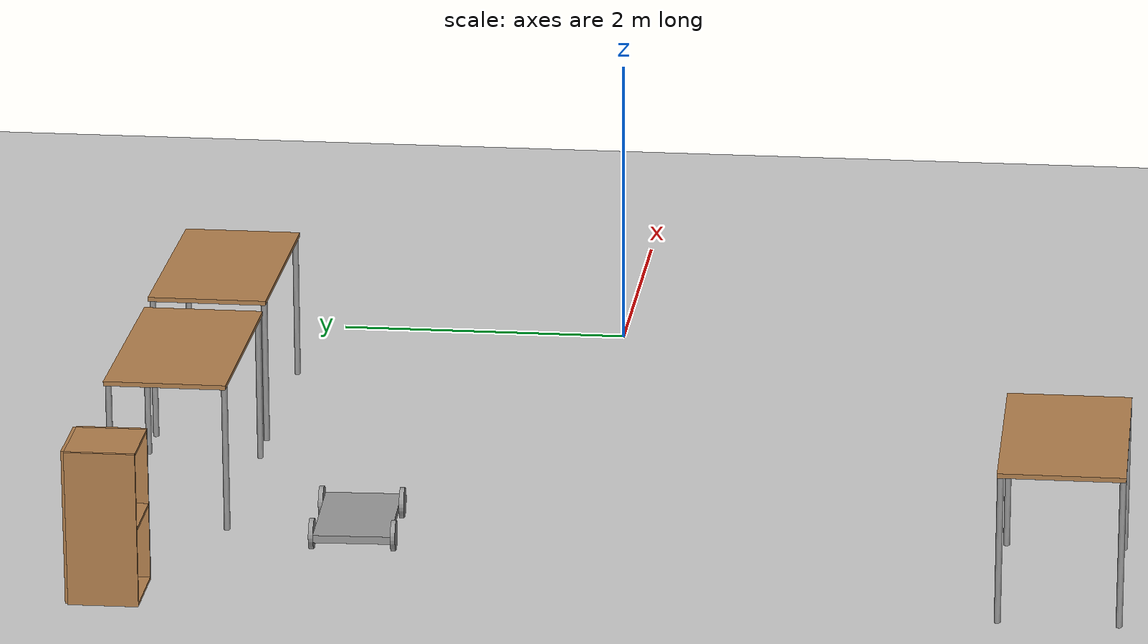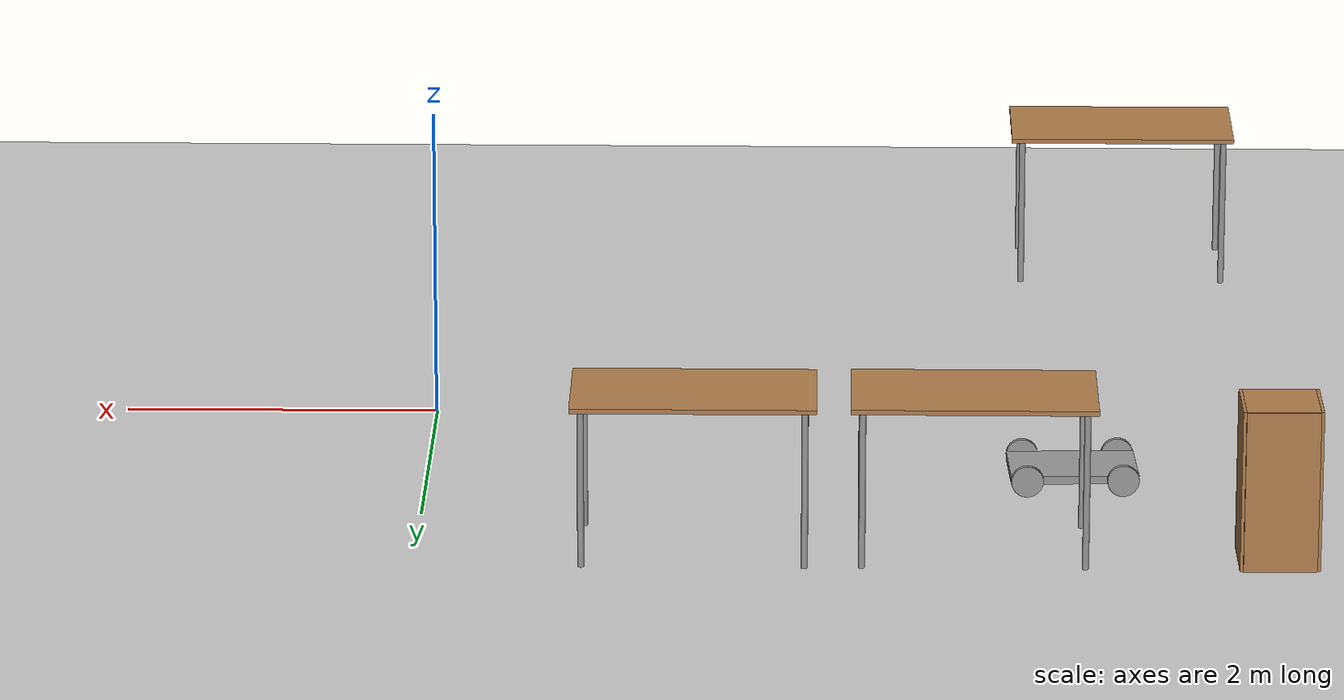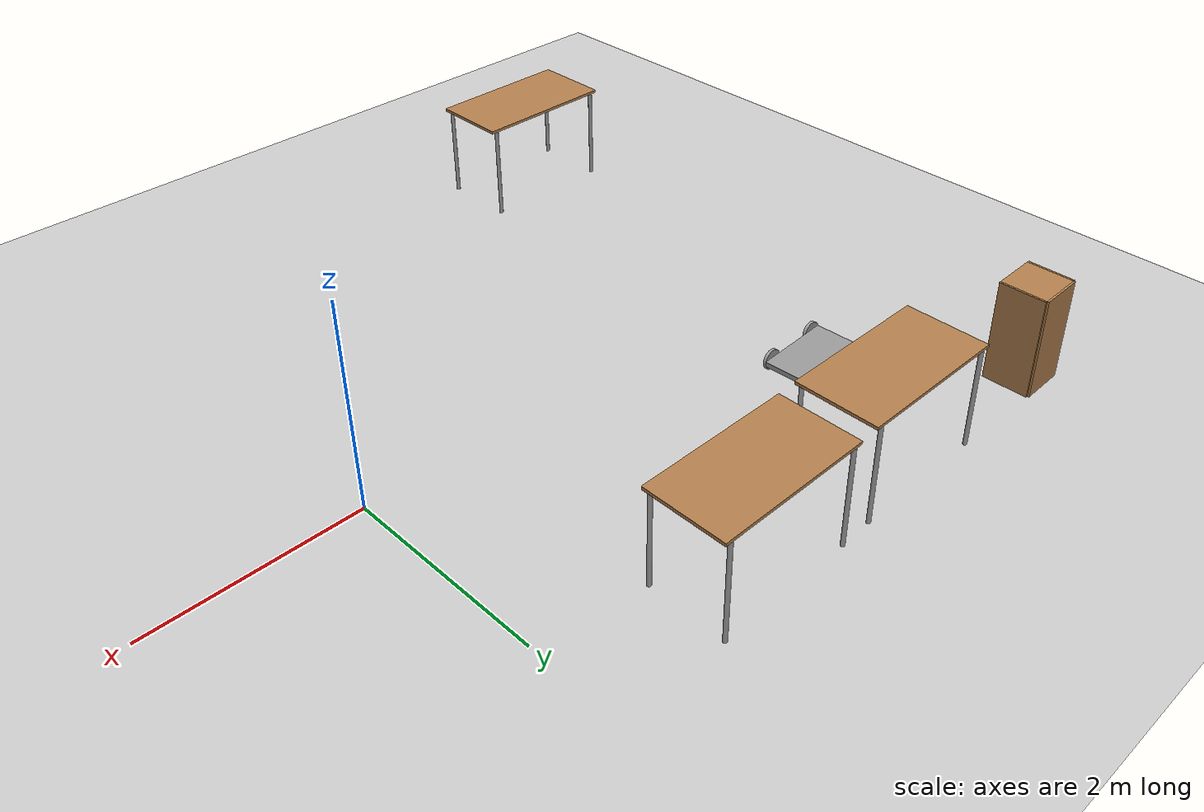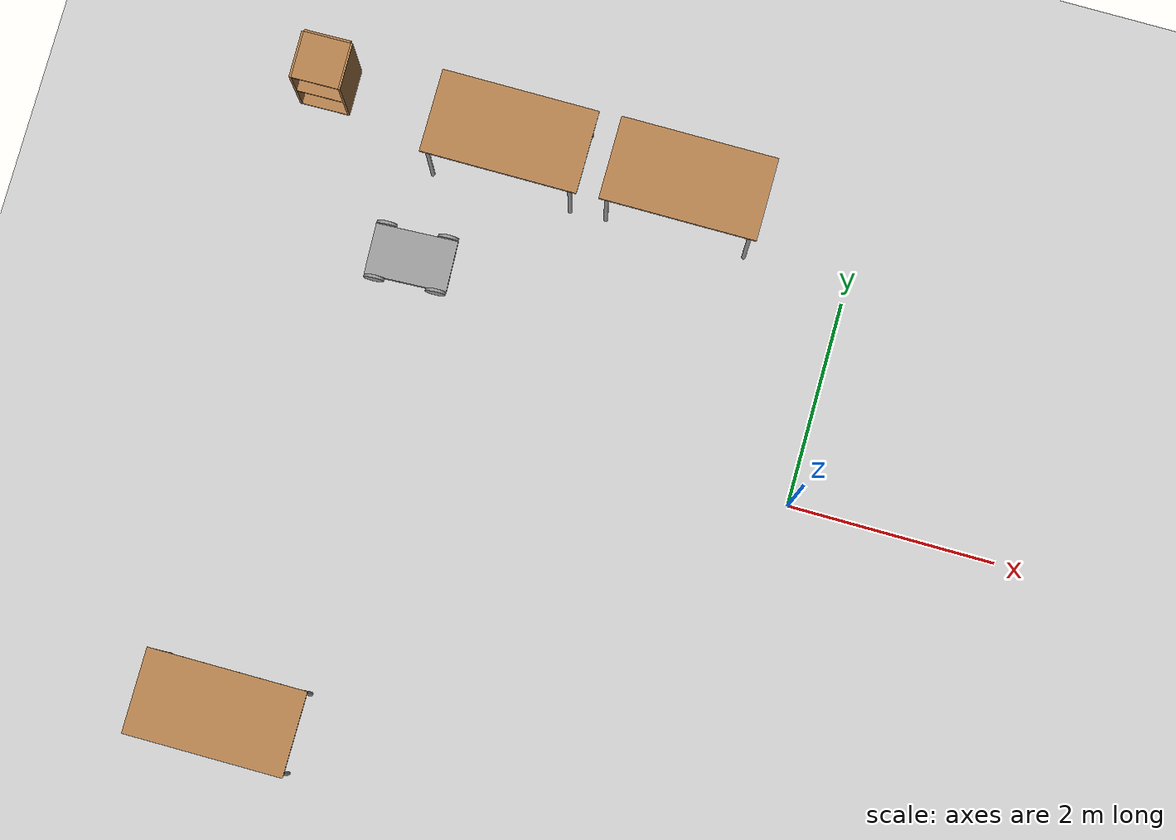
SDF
<sdf version="1.6">
 <world name="default">
  <model name="ground_plane">
   <static>1</static>
   <link name="link">
    <collision name="collision">
     <geometry><plane><normal>0 0 1</normal><size>100 100</size></plane></geometry>
     <surface>
      <contact><collide_bitmask>65535</collide_bitmask></contact>
      <friction><ode><mu>100</mu><mu2>50</mu2></ode></friction>
     </surface>
    </collision>
    <visual name="visual">
     <cast_shadows>0</cast_shadows>
     <geometry><plane><normal>0 0 1</normal><size>100 100</size></plane></geometry>
     <material>
      <script><uri>file://media/materials/scripts/gazebo.material</uri><name>Gazebo/Grey</name></script>
     </material>
    </visual>
   </link>
  </model>
  <model name="fourwheeledrobot_clone">
   <link name="link_0">
    <inertial>
     <mass>1</mass>
     <inertia>
      <ixx>0.166667</ixx>
      <ixy>0</ixy>
      <ixz>0</ixz>
      <iyy>0.166667</iyy>
      <iyz>0</iyz>
      <izz>0.166667</izz>
     </inertia>
    </inertial>
    <visual name="visual">
     <geometry><box><size>0.8 0.5 0.05</size></box></geometry>
     <material>
      <lighting>1</lighting>
      <script><uri>file://media/materials/scripts/gazebo.material</uri><name>Gazebo/Grey</name></script>
      <shader type="pixel"><normal_map>__default__</normal_map></shader>
      <ambient>0.3 0.3 0.3 1</ambient>
      <diffuse>0.7 0.7 0.7 1</diffuse>
      <specular>0.01 0.01 0.01 1</specular>
      <emissive>0 0 0 1</emissive>
     </material>
    </visual>
    <collision name="collision">
     <geometry><box><size>0.8 0.5 0.05</size></box></geometry>
     <surface>
      <friction>
       <ode><mu>1</mu><mu2>1</mu2><fdir1>0 0 0</fdir1><slip1>0</slip1><slip2>0</slip2></ode>
       <torsional>
        <coefficient>1</coefficient>
        <patch_radius>0</patch_radius>
        <surface_radius>0</surface_radius>
        <use_patch_radius>1</use_patch_radius>
        <ode><slip>0</slip></ode>
       </torsional>
      </friction>
      <bounce><restitution_coefficient>0</restitution_coefficient><threshold>1e+06</threshold></bounce>
      <contact>
       <collide_without_contact>0</collide_without_contact>
       <collide_without_contact_bitmask>1</collide_without_contact_bitmask>
       <collide_bitmask>1</collide_bitmask>
       <ode>
        <soft_cfm>0</soft_cfm>
        <soft_erp>0.2</soft_erp>
        <kp>1e+13</kp>
        <kd>1</kd>
        <max_vel>0.01</max_vel>
        <min_depth>0</min_depth>
       </ode>
       <bullet>
        <split_impulse>1</split_impulse>
        <split_impulse_penetration_threshold>-0.01</split_impulse_penetration_threshold>
        <soft_cfm>0</soft_cfm>
        <soft_erp>0.2</soft_erp>
        <kp>1e+13</kp>
        <kd>1</kd>
       </bullet>
      </contact>
     </surface>
    </collision>
   </link>
   <link name="link_1">
    <pose>0.3 0.265 0 0 -0 0</pose>
    <inertial>
     <mass>1</mass>
     <inertia><ixx>0.145833</ixx><ixy>0</ixy><ixz>0</ixz><iyy>0.145833</iyy><iyz>0</iyz><izz>0.125</izz></inertia>
     <pose>0 0 0 1.5707 -0 0</pose>
    </inertial>
    <visual name="visual">
     <pose>0 0 0 1.5707 -0 0</pose>
     <geometry><cylinder><radius>0.1</radius><length>0.03</length></cylinder></geometry>
     <material>
      <lighting>1</lighting>
      <script><uri>file://media/materials/scripts/gazebo.material</uri><name>Gazebo/Grey</name></script>
      <shader type="pixel"><normal_map>__default__</normal_map></shader>
      <ambient>0.3 0.3 0.3 1</ambient>
      <diffuse>0.7 0.7 0.7 1</diffuse>
      <specular>0.01 0.01 0.01 1</specular>
      <emissive>0 0 0 1</emissive>
     </material>
    </visual>
    <collision name="collision">
     <pose>0 0 0 1.5707 -0 0</pose>
     <geometry><cylinder><radius>0.1</radius><length>0.03</length></cylinder></geometry>
     <surface>
      <friction>
       <ode><mu>1</mu><mu2>1</mu2><fdir1>0 0 0</fdir1><slip1>0</slip1><slip2>0</slip2></ode>
       <torsional>
        <coefficient>1</coefficient>
        <patch_radius>0</patch_radius>
        <surface_radius>0</surface_radius>
        <use_patch_radius>1</use_patch_radius>
        <ode><slip>0</slip></ode>
       </torsional>
      </friction>
      <bounce><restitution_coefficient>0</restitution_coefficient><threshold>1e+06</threshold></bounce>
      <contact>
       <collide_without_contact>0</collide_without_contact>
       <collide_without_contact_bitmask>1</collide_without_contact_bitmask>
       <collide_bitmask>1</collide_bitmask>
       <ode>
        <soft_cfm>0</soft_cfm>
        <soft_erp>0.2</soft_erp>
        <kp>1e+13</kp>
        <kd>1</kd>
        <max_vel>0.01</max_vel>
        <min_depth>0</min_depth>
       </ode>
       <bullet>
        <split_impulse>1</split_impulse>
        <split_impulse_penetration_threshold>-0.01</split_impulse_penetration_threshold>
        <soft_cfm>0</soft_cfm>
        <soft_erp>0.2</soft_erp>
        <kp>1e+13</kp>
        <kd>1</kd>
       </bullet>
      </contact>
     </surface>
    </collision>
   </link>
   <link name="link_1_clone">
    <pose>-0.3 0.265 0 0 -0 0</pose>
    <inertial>
     <mass>1</mass>
     <inertia><ixx>0.145833</ixx><ixy>0</ixy><ixz>0</ixz><iyy>0.145833</iyy><iyz>0</iyz><izz>0.125</izz></inertia>
     <pose>0 0 0 1.5707 -0 0</pose>
    </inertial>
    <visual name="visual">
     <pose>0 0 0 1.5707 -0 0</pose>
     <geometry><cylinder><radius>0.1</radius><length>0.03</length></cylinder></geometry>
     <material>
      <lighting>1</lighting>
      <script><uri>file://media/materials/scripts/gazebo.material</uri><name>Gazebo/Grey</name></script>
      <shader type="pixel"><normal_map>__default__</normal_map></shader>
      <ambient>0.3 0.3 0.3 1</ambient>
      <diffuse>0.7 0.7 0.7 1</diffuse>
      <specular>0.01 0.01 0.01 1</specular>
      <emissive>0 0 0 1</emissive>
     </material>
    </visual>
    <collision name="collision">
     <pose>0 0 0 1.5707 -0 0</pose>
     <geometry><cylinder><radius>0.1</radius><length>0.03</length></cylinder></geometry>
     <surface>
      <friction>
       <ode><mu>1</mu><mu2>1</mu2><fdir1>0 0 0</fdir1><slip1>0</slip1><slip2>0</slip2></ode>
       <torsional>
        <coefficient>1</coefficient>
        <patch_radius>0</patch_radius>
        <surface_radius>0</surface_radius>
        <use_patch_radius>1</use_patch_radius>
        <ode><slip>0</slip></ode>
       </torsional>
      </friction>
      <bounce><restitution_coefficient>0</restitution_coefficient><threshold>1e+06</threshold></bounce>
      <contact>
       <collide_without_contact>0</collide_without_contact>
       <collide_without_contact_bitmask>1</collide_without_contact_bitmask>
       <collide_bitmask>1</collide_bitmask>
       <ode>
        <soft_cfm>0</soft_cfm>
        <soft_erp>0.2</soft_erp>
        <kp>1e+13</kp>
        <kd>1</kd>
        <max_vel>0.01</max_vel>
        <min_depth>0</min_depth>
       </ode>
       <bullet>
        <split_impulse>1</split_impulse>
        <split_impulse_penetration_threshold>-0.01</split_impulse_penetration_threshold>
        <soft_cfm>0</soft_cfm>
        <soft_erp>0.2</soft_erp>
        <kp>1e+13</kp>
        <kd>1</kd>
       </bullet>
      </contact>
     </surface>
    </collision>
   </link>
   <link name="link_1_clone_0">
    <pose>0.3 -0.265 0 0 -0 0</pose>
    <inertial>
     <mass>1</mass>
     <inertia><ixx>0.145833</ixx><ixy>0</ixy><ixz>0</ixz><iyy>0.145833</iyy><iyz>0</iyz><izz>0.125</izz></inertia>
     <pose>0 0 0 1.5707 -0 0</pose>
    </inertial>
    <visual name="visual">
     <pose>0 0 0 1.5707 -0 0</pose>
     <geometry><cylinder><radius>0.1</radius><length>0.03</length></cylinder></geometry>
     <material>
      <lighting>1</lighting>
      <script><uri>file://media/materials/scripts/gazebo.material</uri><name>Gazebo/Grey</name></script>
      <shader type="pixel"><normal_map>__default__</normal_map></shader>
      <ambient>0.3 0.3 0.3 1</ambient>
      <diffuse>0.7 0.7 0.7 1</diffuse>
      <specular>0.01 0.01 0.01 1</specular>
      <emissive>0 0 0 1</emissive>
     </material>
    </visual>
    <collision name="collision">
     <pose>0 0 0 1.5707 -0 0</pose>
     <geometry><cylinder><radius>0.1</radius><length>0.03</length></cylinder></geometry>
     <surface>
      <friction>
       <ode><mu>1</mu><mu2>1</mu2><fdir1>0 0 0</fdir1><slip1>0</slip1><slip2>0</slip2></ode>
       <torsional>
        <coefficient>1</coefficient>
        <patch_radius>0</patch_radius>
        <surface_radius>0</surface_radius>
        <use_patch_radius>1</use_patch_radius>
        <ode><slip>0</slip></ode>
       </torsional>
      </friction>
      <bounce><restitution_coefficient>0</restitution_coefficient><threshold>1e+06</threshold></bounce>
      <contact>
       <collide_without_contact>0</collide_without_contact>
       <collide_without_contact_bitmask>1</collide_without_contact_bitmask>
       <collide_bitmask>1</collide_bitmask>
       <ode>
        <soft_cfm>0</soft_cfm>
        <soft_erp>0.2</soft_erp>
        <kp>1e+13</kp>
        <kd>1</kd>
        <max_vel>0.01</max_vel>
        <min_depth>0</min_depth>
       </ode>
       <bullet>
        <split_impulse>1</split_impulse>
        <split_impulse_penetration_threshold>-0.01</split_impulse_penetration_threshold>
        <soft_cfm>0</soft_cfm>
        <soft_erp>0.2</soft_erp>
        <kp>1e+13</kp>
        <kd>1</kd>
       </bullet>
      </contact>
     </surface>
    </collision>
   </link>
   <link name="link_1_clone_1">
    <pose>-0.3 -0.265 0 0 -0 0</pose>
    <inertial>
     <mass>1</mass>
     <inertia><ixx>0.145833</ixx><ixy>0</ixy><ixz>0</ixz><iyy>0.145833</iyy><iyz>0</iyz><izz>0.125</izz></inertia>
     <pose>0 0 0 1.5707 -0 0</pose>
    </inertial>
    <visual name="visual">
     <pose>0 0 0 1.5707 -0 0</pose>
     <geometry><cylinder><radius>0.1</radius><length>0.03</length></cylinder></geometry>
     <material>
      <lighting>1</lighting>
      <script><uri>file://media/materials/scripts/gazebo.material</uri><name>Gazebo/Grey</name></script>
      <shader type="pixel"><normal_map>__default__</normal_map></shader>
      <ambient>0.3 0.3 0.3 1</ambient>
      <diffuse>0.7 0.7 0.7 1</diffuse>
      <specular>0.01 0.01 0.01 1</specular>
      <emissive>0 0 0 1</emissive>
     </material>
    </visual>
    <collision name="collision">
     <pose>0 0 0 1.5707 -0 0</pose>
     <geometry><cylinder><radius>0.1</radius><length>0.03</length></cylinder></geometry>
     <surface>
      <friction>
       <ode><mu>1</mu><mu2>1</mu2><fdir1>0 0 0</fdir1><slip1>0</slip1><slip2>0</slip2></ode>
       <torsional>
        <coefficient>1</coefficient>
        <patch_radius>0</patch_radius>
        <surface_radius>0</surface_radius>
        <use_patch_radius>1</use_patch_radius>
        <ode><slip>0</slip></ode>
       </torsional>
      </friction>
      <bounce><restitution_coefficient>0</restitution_coefficient><threshold>1e+06</threshold></bounce>
      <contact>
       <collide_without_contact>0</collide_without_contact>
       <collide_without_contact_bitmask>1</collide_without_contact_bitmask>
       <collide_bitmask>1</collide_bitmask>
       <ode>
        <soft_cfm>0</soft_cfm>
        <soft_erp>0.2</soft_erp>
        <kp>1e+13</kp>
        <kd>1</kd>
        <max_vel>0.01</max_vel>
        <min_depth>0</min_depth>
       </ode>
       <bullet>
        <split_impulse>1</split_impulse>
        <split_impulse_penetration_threshold>-0.01</split_impulse_penetration_threshold>
        <soft_cfm>0</soft_cfm>
        <soft_erp>0.2</soft_erp>
        <kp>1e+13</kp>
        <kd>1</kd>
       </bullet>
      </contact>
     </surface>
    </collision>
   </link>
   <joint name="link_0_JOINT_4" type="revolute">
    <parent>link_0</parent>
    <child>link_1</child>
    <axis>
     <xyz>0 1 0</xyz>
     <use_parent_model_frame>0</use_parent_model_frame>
     <limit>
      <lower>-1.79769e+308</lower>
      <upper>1.79769e+308</upper>
      <effort>-1</effort>
      <velocity>-1</velocity>
     </limit>
     <dynamics>
      <spring_reference>0</spring_reference>
      <spring_stiffness>0</spring_stiffness>
      <damping>0</damping>
     </dynamics>
    </axis>
    <physics>
     <ode><limit><cfm>0</cfm><erp>0.2</erp></limit><suspension><cfm>0</cfm><erp>0.2</erp></suspension></ode>
    </physics>
   </joint>
   <joint name="link_0_JOINT_5" type="revolute">
    <parent>link_0</parent>
    <child>link_1_clone</child>
    <axis>
     <xyz>0 1 0</xyz>
     <use_parent_model_frame>0</use_parent_model_frame>
     <limit>
      <lower>-1.79769e+308</lower>
      <upper>1.79769e+308</upper>
      <effort>-1</effort>
      <velocity>-1</velocity>
     </limit>
     <dynamics>
      <spring_reference>0</spring_reference>
      <spring_stiffness>0</spring_stiffness>
      <damping>0</damping>
     </dynamics>
    </axis>
    <physics>
     <ode><limit><cfm>0</cfm><erp>0.2</erp></limit><suspension><cfm>0</cfm><erp>0.2</erp></suspension></ode>
    </physics>
   </joint>
   <joint name="link_0_JOINT_6" type="revolute">
    <parent>link_0</parent>
    <child>link_1_clone_0</child>
    <axis>
     <xyz>0 1 0</xyz>
     <use_parent_model_frame>0</use_parent_model_frame>
     <limit>
      <lower>-1.79769e+308</lower>
      <upper>1.79769e+308</upper>
      <effort>-1</effort>
      <velocity>-1</velocity>
     </limit>
     <dynamics>
      <spring_reference>0</spring_reference>
      <spring_stiffness>0</spring_stiffness>
      <damping>0</damping>
     </dynamics>
    </axis>
    <physics>
     <ode><limit><cfm>0</cfm><erp>0.2</erp></limit><suspension><cfm>0</cfm><erp>0.2</erp></suspension></ode>
    </physics>
   </joint>
   <joint name="link_0_JOINT_7" type="revolute">
    <parent>link_0</parent>
    <child>link_1_clone_1</child>
    <axis>
     <xyz>0 1 0</xyz>
     <use_parent_model_frame>0</use_parent_model_frame>
     <limit>
      <lower>-1.79769e+308</lower>
      <upper>1.79769e+308</upper>
      <effort>-1</effort>
      <velocity>-1</velocity>
     </limit>
     <dynamics>
      <spring_reference>0</spring_reference>
      <spring_stiffness>0</spring_stiffness>
      <damping>0</damping>
     </dynamics>
    </axis>
    <physics>
     <ode><limit><cfm>0</cfm><erp>0.2</erp></limit><suspension><cfm>0</cfm><erp>0.2</erp></suspension></ode>
    </physics>
   </joint>
   <static>0</static>
   <pose>-4.05914 1.32087 0.100001 4e-06 -4e-06 0.043632</pose>
  </model>
  <model name="table_0">
   <static>1</static>
   <link name="link">
    <collision name="surface">
     <pose>0 0 1 0 -0 0</pose>
     <geometry><box><size>1.5 0.8 0.03</size></box></geometry>
     <surface><friction><ode><mu>0.6</mu><mu2>0.6</mu2></ode></friction></surface>
    </collision>
    <visual name="visual1">
     <pose>0 0 1 0 -0 0</pose>
     <geometry><box><size>1.5 0.8 0.03</size></box></geometry>
     <material>
      <script><uri>file://media/materials/scripts/gazebo.material</uri><name>Gazebo/Wood</name></script>
     </material>
    </visual>
    <collision name="front_left_leg">
     <pose>0.68 0.38 0.5 0 -0 0</pose>
     <geometry><cylinder><radius>0.02</radius><length>1</length></cylinder></geometry>
    </collision>
    <visual name="front_left_leg">
     <pose>0.68 0.38 0.5 0 -0 0</pose>
     <geometry><cylinder><radius>0.02</radius><length>1</length></cylinder></geometry>
     <material>
      <script><uri>file://media/materials/scripts/gazebo.material</uri><name>Gazebo/Grey</name></script>
     </material>
    </visual>
    <collision name="front_right_leg">
     <pose>0.68 -0.38 0.5 0 -0 0</pose>
     <geometry><cylinder><radius>0.02</radius><length>1</length></cylinder></geometry>
    </collision>
    <visual name="front_right_leg">
     <pose>0.68 -0.38 0.5 0 -0 0</pose>
     <geometry><cylinder><radius>0.02</radius><length>1</length></cylinder></geometry>
     <material>
      <script><uri>file://media/materials/scripts/gazebo.material</uri><name>Gazebo/Grey</name></script>
     </material>
    </visual>
    <collision name="back_right_leg">
     <pose>-0.68 -0.38 0.5 0 -0 0</pose>
     <geometry><cylinder><radius>0.02</radius><length>1</length></cylinder></geometry>
    </collision>
    <visual name="back_right_leg">
     <pose>-0.68 -0.38 0.5 0 -0 0</pose>
     <geometry><cylinder><radius>0.02</radius><length>1</length></cylinder></geometry>
     <material>
      <script><uri>file://media/materials/scripts/gazebo.material</uri><name>Gazebo/Grey</name></script>
     </material>
    </visual>
    <collision name="back_left_leg">
     <pose>-0.68 0.38 0.5 0 -0 0</pose>
     <geometry><cylinder><radius>0.02</radius><length>1</length></cylinder></geometry>
    </collision>
    <visual name="back_left_leg">
     <pose>-0.68 0.38 0.5 0 -0 0</pose>
     <geometry><cylinder><radius>0.02</radius><length>1</length></cylinder></geometry>
     <material>
      <script><uri>file://media/materials/scripts/gazebo.material</uri><name>Gazebo/Grey</name></script>
     </material>
    </visual>
   </link>
   <pose>-1.70286 2.56845 0 0 -0 0</pose>
  </model>
  <model name="table_1">
   <static>1</static>
   <link name="link">
    <collision name="surface">
     <pose>0 0 1 0 -0 0</pose>
     <geometry><box><size>1.5 0.8 0.03</size></box></geometry>
     <surface><friction><ode><mu>0.6</mu><mu2>0.6</mu2></ode></friction></surface>
    </collision>
    <visual name="visual1">
     <pose>0 0 1 0 -0 0</pose>
     <geometry><box><size>1.5 0.8 0.03</size></box></geometry>
     <material>
      <script><uri>file://media/materials/scripts/gazebo.material</uri><name>Gazebo/Wood</name></script>
     </material>
    </visual>
    <collision name="front_left_leg">
     <pose>0.68 0.38 0.5 0 -0 0</pose>
     <geometry><cylinder><radius>0.02</radius><length>1</length></cylinder></geometry>
    </collision>
    <visual name="front_left_leg">
     <pose>0.68 0.38 0.5 0 -0 0</pose>
     <geometry><cylinder><radius>0.02</radius><length>1</length></cylinder></geometry>
     <material>
      <script><uri>file://media/materials/scripts/gazebo.material</uri><name>Gazebo/Grey</name></script>
     </material>
    </visual>
    <collision name="front_right_leg">
     <pose>0.68 -0.38 0.5 0 -0 0</pose>
     <geometry><cylinder><radius>0.02</radius><length>1</length></cylinder></geometry>
    </collision>
    <visual name="front_right_leg">
     <pose>0.68 -0.38 0.5 0 -0 0</pose>
     <geometry><cylinder><radius>0.02</radius><length>1</length></cylinder></geometry>
     <material>
      <script><uri>file://media/materials/scripts/gazebo.material</uri><name>Gazebo/Grey</name></script>
     </material>
    </visual>
    <collision name="back_right_leg">
     <pose>-0.68 -0.38 0.5 0 -0 0</pose>
     <geometry><cylinder><radius>0.02</radius><length>1</length></cylinder></geometry>
    </collision>
    <visual name="back_right_leg">
     <pose>-0.68 -0.38 0.5 0 -0 0</pose>
     <geometry><cylinder><radius>0.02</radius><length>1</length></cylinder></geometry>
     <material>
      <script><uri>file://media/materials/scripts/gazebo.material</uri><name>Gazebo/Grey</name></script>
     </material>
    </visual>
    <collision name="back_left_leg">
     <pose>-0.68 0.38 0.5 0 -0 0</pose>
     <geometry><cylinder><radius>0.02</radius><length>1</length></cylinder></geometry>
    </collision>
    <visual name="back_left_leg">
     <pose>-0.68 0.38 0.5 0 -0 0</pose>
     <geometry><cylinder><radius>0.02</radius><length>1</length></cylinder></geometry>
     <material>
      <script><uri>file://media/materials/scripts/gazebo.material</uri><name>Gazebo/Grey</name></script>
     </material>
    </visual>
   </link>
   <pose>-3.4114 2.55518 0 0 -0 0</pose>
  </model>
  <model name="table_3">
   <static>1</static>
   <link name="link">
    <collision name="surface">
     <pose>0 0 1 0 -0 0</pose>
     <geometry><box><size>1.5 0.8 0.03</size></box></geometry>
     <surface><friction><ode><mu>0.6</mu><mu2>0.6</mu2></ode></friction></surface>
    </collision>
    <visual name="visual1">
     <pose>0 0 1 0 -0 0</pose>
     <geometry><box><size>1.5 0.8 0.03</size></box></geometry>
     <material>
      <script><uri>file://media/materials/scripts/gazebo.material</uri><name>Gazebo/Wood</name></script>
     </material>
    </visual>
    <collision name="front_left_leg">
     <pose>0.68 0.38 0.5 0 -0 0</pose>
     <geometry><cylinder><radius>0.02</radius><length>1</length></cylinder></geometry>
    </collision>
    <visual name="front_left_leg">
     <pose>0.68 0.38 0.5 0 -0 0</pose>
     <geometry><cylinder><radius>0.02</radius><length>1</length></cylinder></geometry>
     <material>
      <script><uri>file://media/materials/scripts/gazebo.material</uri><name>Gazebo/Grey</name></script>
     </material>
    </visual>
    <collision name="front_right_leg">
     <pose>0.68 -0.38 0.5 0 -0 0</pose>
     <geometry><cylinder><radius>0.02</radius><length>1</length></cylinder></geometry>
    </collision>
    <visual name="front_right_leg">
     <pose>0.68 -0.38 0.5 0 -0 0</pose>
     <geometry><cylinder><radius>0.02</radius><length>1</length></cylinder></geometry>
     <material>
      <script><uri>file://media/materials/scripts/gazebo.material</uri><name>Gazebo/Grey</name></script>
     </material>
    </visual>
    <collision name="back_right_leg">
     <pose>-0.68 -0.38 0.5 0 -0 0</pose>
     <geometry><cylinder><radius>0.02</radius><length>1</length></cylinder></geometry>
    </collision>
    <visual name="back_right_leg">
     <pose>-0.68 -0.38 0.5 0 -0 0</pose>
     <geometry><cylinder><radius>0.02</radius><length>1</length></cylinder></geometry>
     <material>
      <script><uri>file://media/materials/scripts/gazebo.material</uri><name>Gazebo/Grey</name></script>
     </material>
    </visual>
    <collision name="back_left_leg">
     <pose>-0.68 0.38 0.5 0 -0 0</pose>
     <geometry><cylinder><radius>0.02</radius><length>1</length></cylinder></geometry>
    </collision>
    <visual name="back_left_leg">
     <pose>-0.68 0.38 0.5 0 -0 0</pose>
     <geometry><cylinder><radius>0.02</radius><length>1</length></cylinder></geometry>
     <material>
      <script><uri>file://media/materials/scripts/gazebo.material</uri><name>Gazebo/Grey</name></script>
     </material>
    </visual>
   </link>
   <pose>-4.51382 -3.26564 0 0 -0 0</pose>
  </model>
  <model name="cabinet">
   <static>1</static>
   <link name="cabinet_bottom_plate">
    <inertial>
     <pose>0 0 -1 0 -0 0</pose>
     <inertia><ixx>2.05</ixx><ixy>0</ixy><ixz>0</ixz><iyy>2.05</iyy><iyz>0</iyz><izz>2.05</izz></inertia>
     <mass>25</mass>
    </inertial>
    <collision name="cabinet_bottom_plate_geom">
     <pose>0 0 0.01 0 -0 0</pose>
     <geometry><box><size>0.45 0.45 0.02</size></box></geometry>
    </collision>
    <visual name="cabinet_bottom_plate_geom_visual">
     <pose>0 0 0.01 0 -0 0</pose>
     <geometry><box><size>0.45 0.45 0.02</size></box></geometry>
     <material>
      <script><uri>file://media/materials/scripts/gazebo.material</uri><name>Gazebo/Wood</name></script>
     </material>
    </visual>
    <collision name="cabinet_bottom_plate_geom_cabinet_back_plate">
     <pose>0.235 0 0.51 0 -0 0</pose>
     <geometry><box><size>0.02 0.45 1.02</size></box></geometry>
    </collision>
    <visual name="cabinet_bottom_plate_geom_cabinet_back_plate_visual">
     <pose>0.235 0 0.51 0 -0 0</pose>
     <geometry><box><size>0.02 0.45 1.02</size></box></geometry>
     <material>
      <script><uri>file://media/materials/scripts/gazebo.material</uri><name>Gazebo/Wood</name></script>
     </material>
    </visual>
    <collision name="cabinet_bottom_plate_geom_cabinet_left_plate">
     <pose>0 0.235 0.51 0 -0 0</pose>
     <geometry><box><size>0.45 0.02 1.02</size></box></geometry>
    </collision>
    <visual name="cabinet_bottom_plate_geom_cabinet_left_plate_visual">
     <pose>0 0.235 0.51 0 -0 0</pose>
     <geometry><box><size>0.45 0.02 1.02</size></box></geometry>
     <material>
      <script><uri>file://media/materials/scripts/gazebo.material</uri><name>Gazebo/Wood</name></script>
     </material>
    </visual>
    <collision name="cabinet_bottom_plate_geom_cabinet_middle_plate">
     <pose>0 0 0.51 0 -0 0</pose>
     <geometry><box><size>0.45 0.45 0.02</size></box></geometry>
    </collision>
    <visual name="cabinet_bottom_plate_geom_cabinet_middle_plate_visual">
     <pose>0 0 0.51 0 -0 0</pose>
     <geometry><box><size>0.45 0.45 0.02</size></box></geometry>
     <material>
      <script><uri>file://media/materials/scripts/gazebo.material</uri><name>Gazebo/Wood</name></script>
     </material>
    </visual>
    <collision name="cabinet_bottom_plate_geom_cabinet_right_plate">
     <pose>0 -0.235 0.51 0 -0 0</pose>
     <geometry><box><size>0.45 0.02 1.02</size></box></geometry>
    </collision>
    <visual name="cabinet_bottom_plate_geom_cabinet_right_plate_visual">
     <pose>0 -0.235 0.51 0 -0 0</pose>
     <geometry><box><size>0.45 0.02 1.02</size></box></geometry>
     <material>
      <script><uri>file://media/materials/scripts/gazebo.material</uri><name>Gazebo/Wood</name></script>
     </material>
    </visual>
    <collision name="cabinet_bottom_plate_geom_cabinet_top_plate">
     <pose>0 0 1.01 0 -0 0</pose>
     <geometry><box><size>0.45 0.45 0.02</size></box></geometry>
    </collision>
    <visual name="cabinet_bottom_plate_geom_cabinet_top_plate_visual">
     <pose>0 0 1.01 0 -0 0</pose>
     <geometry><box><size>0.45 0.45 0.02</size></box></geometry>
     <material>
      <script><uri>file://media/materials/scripts/gazebo.material</uri><name>Gazebo/Wood</name></script>
     </material>
    </visual>
   </link>
   <pose>-5.26941 2.73345 0 0 -0 1.58614</pose>
  </model>
 </world>
</sdf>
